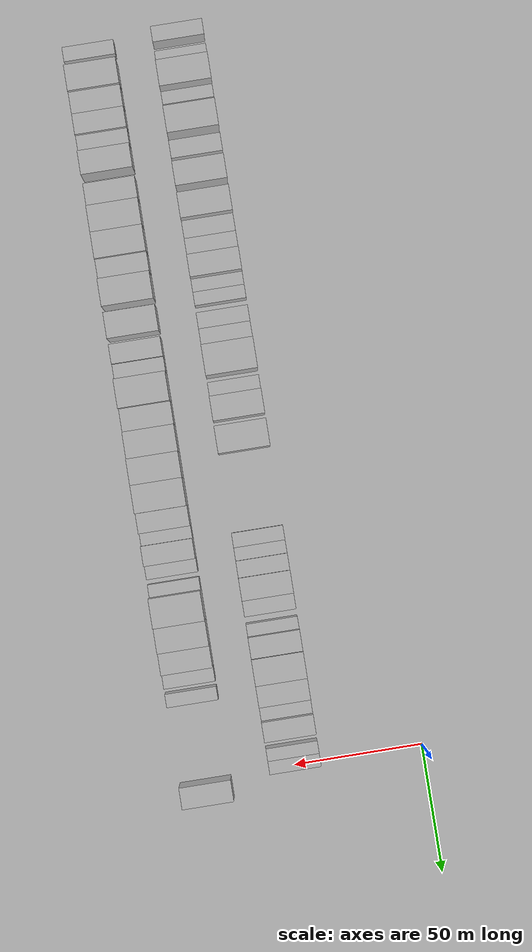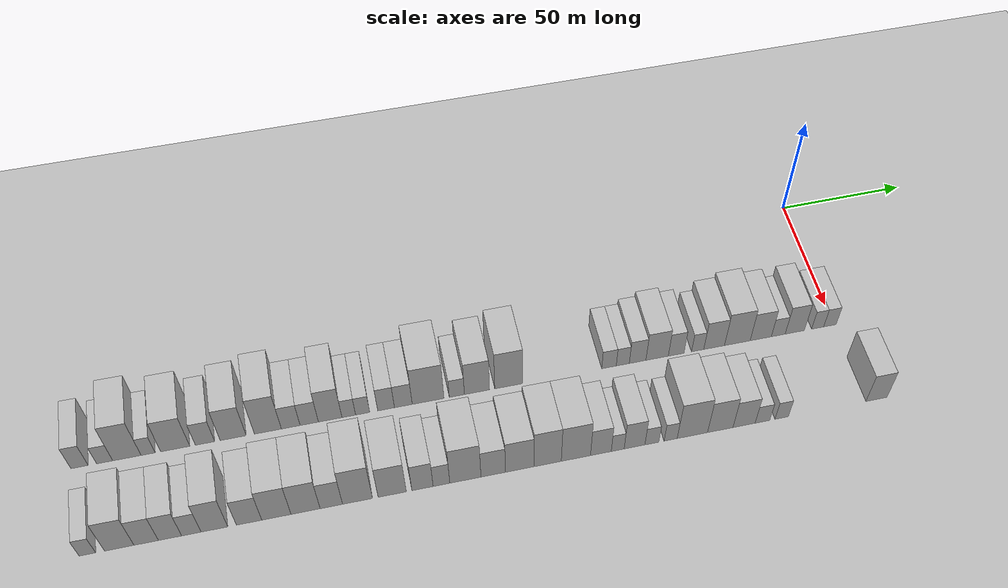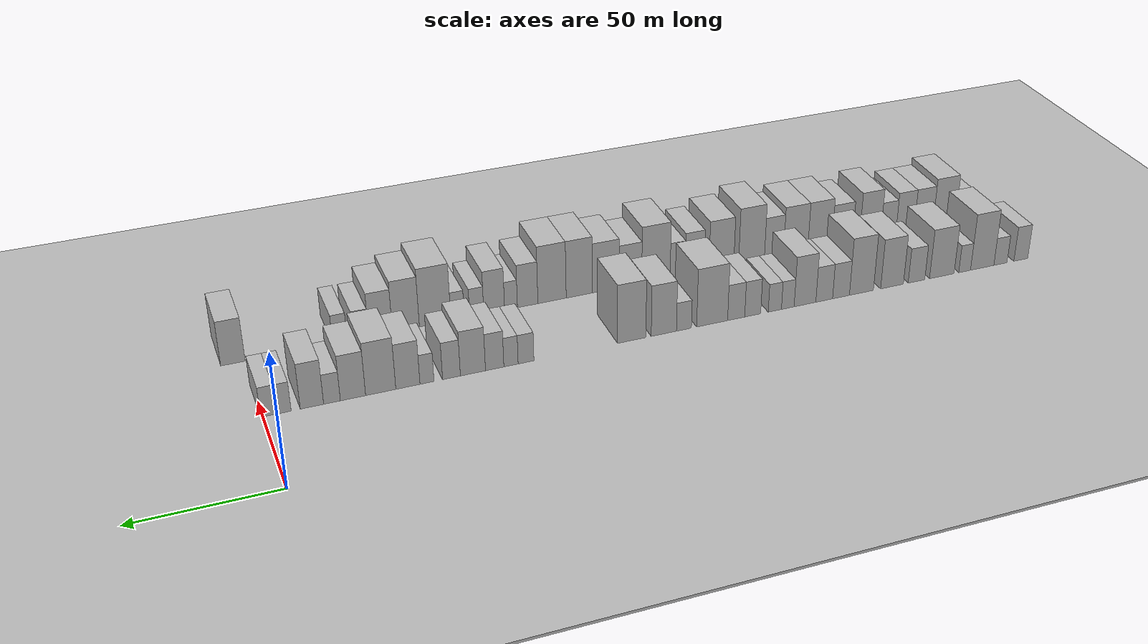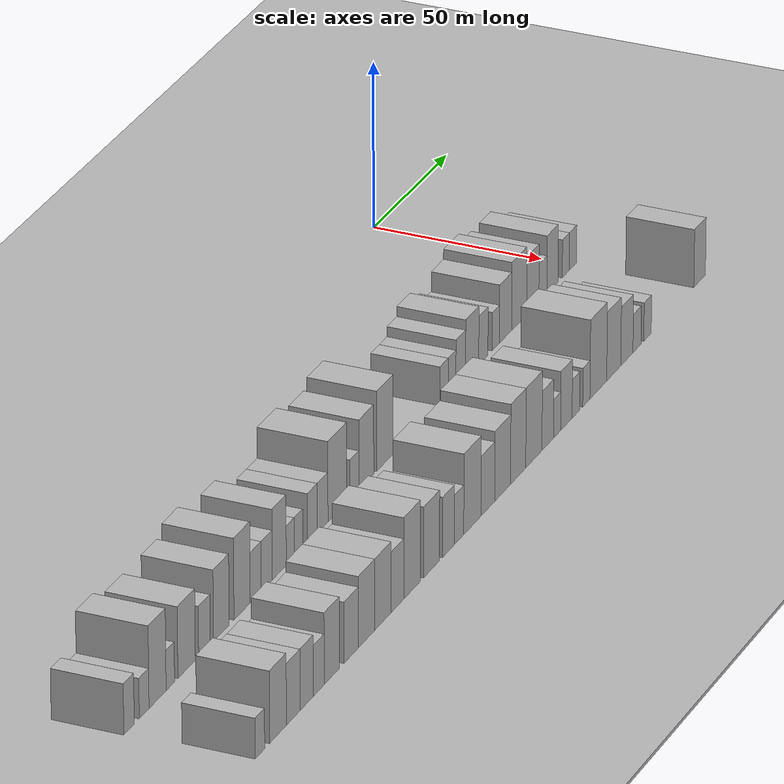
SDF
<sdf version="1.6">
 <world name="default">
  <include><name>ground_plane_1</name><uri>model://HANNAS_ground_plane</uri></include>
  <include>
   <name>ground_plane_2</name>
   <uri>model://HANNAS_ground_plane</uri>
   <pose>100 0 0  0 0 0</pose>
  </include>
  <model name="building_1">
   <static>1</static>
   <pose>50.0000 -286.9524 0 0.000000 0.000000 0.000000</pose>
   <link name="link">
    <pose>0 0 7.50 0 0 0</pose>
    <collision name="collision"><geometry><box><size>20.0000 6.0952 15.0000</size></box></geometry></collision>
    <visual name="visual">
     <cast_shadows>0</cast_shadows>
     <geometry><box><size>20.0000 6.0952 15.0000</size></box></geometry>
     <material>
      <script>
       <uri>model://HANNAS_wall/materials/scripts</uri>
       <uri>model://HANNAS_wall/materials/textures</uri>
       <name>vrc/HANNAS_wall</name>
      </script>
     </material>
    </visual>
   </link>
  </model>
  <model name="building_2">
   <static>1</static>
   <pose>50.0000 -278.0314 0 0.000000 0.000000 0.000000</pose>
   <link name="link">
    <pose>0 0 6.00 0 0 0</pose>
    <collision name="collision"><geometry><box><size>20.0000 5.7467 12.0000</size></box></geometry></collision>
    <visual name="visual">
     <cast_shadows>0</cast_shadows>
     <geometry><box><size>20.0000 5.7467 12.0000</size></box></geometry>
     <material>
      <script>
       <uri>model://HANNAS_wall/materials/scripts</uri>
       <uri>model://HANNAS_wall/materials/textures</uri>
       <name>vrc/HANNAS_wall</name>
      </script>
     </material>
    </visual>
   </link>
  </model>
  <model name="building_3">
   <static>1</static>
   <pose>50.0000 -270.0946 0 0.000000 0.000000 0.000000</pose>
   <link name="link">
    <pose>0 0 12.00 0 0 0</pose>
    <collision name="collision"><geometry><box><size>20.0000 10.1269 24.0000</size></box></geometry></collision>
    <visual name="visual">
     <cast_shadows>0</cast_shadows>
     <geometry><box><size>20.0000 10.1269 24.0000</size></box></geometry>
     <material>
      <script>
       <uri>model://HANNAS_wall/materials/scripts</uri>
       <uri>model://HANNAS_wall/materials/textures</uri>
       <name>vrc/HANNAS_wall</name>
      </script>
     </material>
    </visual>
   </link>
  </model>
  <model name="building_4">
   <static>1</static>
   <pose>50.0000 -262.5063 0 0.000000 0.000000 0.000000</pose>
   <link name="link">
    <pose>0 0 6.00 0 0 0</pose>
    <collision name="collision"><geometry><box><size>20.0000 5.0498 12.0000</size></box></geometry></collision>
    <visual name="visual">
     <cast_shadows>0</cast_shadows>
     <geometry><box><size>20.0000 5.0498 12.0000</size></box></geometry>
     <material>
      <script>
       <uri>model://HANNAS_wall/materials/scripts</uri>
       <uri>model://HANNAS_wall/materials/textures</uri>
       <name>vrc/HANNAS_wall</name>
      </script>
     </material>
    </visual>
   </link>
  </model>
  <model name="building_5">
   <static>1</static>
   <pose>50.0000 -252.7505 0 0.000000 0.000000 0.000000</pose>
   <link name="link">
    <pose>0 0 10.50 0 0 0</pose>
    <collision name="collision"><geometry><box><size>20.0000 10.4617 21.0000</size></box></geometry></collision>
    <visual name="visual">
     <cast_shadows>0</cast_shadows>
     <geometry><box><size>20.0000 10.4617 21.0000</size></box></geometry>
     <material>
      <script>
       <uri>model://HANNAS_wall/materials/scripts</uri>
       <uri>model://HANNAS_wall/materials/textures</uri>
       <name>vrc/HANNAS_wall</name>
      </script>
     </material>
    </visual>
   </link>
  </model>
  <model name="building_6">
   <static>1</static>
   <pose>50.0000 -242.0222 0 0.000000 0.000000 0.000000</pose>
   <link name="link">
    <pose>0 0 7.50 0 0 0</pose>
    <collision name="collision"><geometry><box><size>20.0000 6.9950 15.0000</size></box></geometry></collision>
    <visual name="visual">
     <cast_shadows>0</cast_shadows>
     <geometry><box><size>20.0000 6.9950 15.0000</size></box></geometry>
     <material>
      <script>
       <uri>model://HANNAS_wall/materials/scripts</uri>
       <uri>model://HANNAS_wall/materials/textures</uri>
       <name>vrc/HANNAS_wall</name>
      </script>
     </material>
    </visual>
   </link>
  </model>
  <model name="building_7">
   <static>1</static>
   <pose>50.0000 -231.7771 0 0.000000 0.000000 0.000000</pose>
   <link name="link">
    <pose>0 0 10.50 0 0 0</pose>
    <collision name="collision"><geometry><box><size>20.0000 9.4951 21.0000</size></box></geometry></collision>
    <visual name="visual">
     <cast_shadows>0</cast_shadows>
     <geometry><box><size>20.0000 9.4951 21.0000</size></box></geometry>
     <material>
      <script>
       <uri>model://HANNAS_wall/materials/scripts</uri>
       <uri>model://HANNAS_wall/materials/textures</uri>
       <name>vrc/HANNAS_wall</name>
      </script>
     </material>
    </visual>
   </link>
  </model>
  <model name="building_8">
   <static>1</static>
   <pose>50.0000 -219.0896 0 0.000000 0.000000 0.000000</pose>
   <link name="link">
    <pose>0 0 12.00 0 0 0</pose>
    <collision name="collision"><geometry><box><size>20.0000 9.8800 24.0000</size></box></geometry></collision>
    <visual name="visual">
     <cast_shadows>0</cast_shadows>
     <geometry><box><size>20.0000 9.8800 24.0000</size></box></geometry>
     <material>
      <script>
       <uri>model://HANNAS_wall/materials/scripts</uri>
       <uri>model://HANNAS_wall/materials/textures</uri>
       <name>vrc/HANNAS_wall</name>
      </script>
     </material>
    </visual>
   </link>
  </model>
  <model name="building_9">
   <static>1</static>
   <pose>50.0000 -210.7066 0 0.000000 0.000000 0.000000</pose>
   <link name="link">
    <pose>0 0 7.50 0 0 0</pose>
    <collision name="collision"><geometry><box><size>20.0000 6.8859 15.0000</size></box></geometry></collision>
    <visual name="visual">
     <cast_shadows>0</cast_shadows>
     <geometry><box><size>20.0000 6.8859 15.0000</size></box></geometry>
     <material>
      <script>
       <uri>model://HANNAS_wall/materials/scripts</uri>
       <uri>model://HANNAS_wall/materials/textures</uri>
       <name>vrc/HANNAS_wall</name>
      </script>
     </material>
    </visual>
   </link>
  </model>
  <model name="building_10">
   <static>1</static>
   <pose>50.0000 -203.8775 0 0.000000 0.000000 0.000000</pose>
   <link name="link">
    <pose>0 0 7.50 0 0 0</pose>
    <collision name="collision"><geometry><box><size>20.0000 6.7725 15.0000</size></box></geometry></collision>
    <visual name="visual">
     <cast_shadows>0</cast_shadows>
     <geometry><box><size>20.0000 6.7725 15.0000</size></box></geometry>
     <material>
      <script>
       <uri>model://HANNAS_wall/materials/scripts</uri>
       <uri>model://HANNAS_wall/materials/textures</uri>
       <name>vrc/HANNAS_wall</name>
      </script>
     </material>
    </visual>
   </link>
  </model>
  <model name="building_11">
   <static>1</static>
   <pose>50.0000 -196.1210 0 0.000000 0.000000 0.000000</pose>
   <link name="link">
    <pose>0 0 10.50 0 0 0</pose>
    <collision name="collision"><geometry><box><size>20.0000 8.7404 21.0000</size></box></geometry></collision>
    <visual name="visual">
     <cast_shadows>0</cast_shadows>
     <geometry><box><size>20.0000 8.7404 21.0000</size></box></geometry>
     <material>
      <script>
       <uri>model://HANNAS_wall/materials/scripts</uri>
       <uri>model://HANNAS_wall/materials/textures</uri>
       <name>vrc/HANNAS_wall</name>
      </script>
     </material>
    </visual>
   </link>
  </model>
  <model name="building_12">
   <static>1</static>
   <pose>50.0000 -189.2154 0 0.000000 0.000000 0.000000</pose>
   <link name="link">
    <pose>0 0 6.00 0 0 0</pose>
    <collision name="collision"><geometry><box><size>20.0000 5.0708 12.0000</size></box></geometry></collision>
    <visual name="visual">
     <cast_shadows>0</cast_shadows>
     <geometry><box><size>20.0000 5.0708 12.0000</size></box></geometry>
     <material>
      <script>
       <uri>model://HANNAS_wall/materials/scripts</uri>
       <uri>model://HANNAS_wall/materials/textures</uri>
       <name>vrc/HANNAS_wall</name>
      </script>
     </material>
    </visual>
   </link>
  </model>
  <model name="building_13">
   <static>1</static>
   <pose>50.0000 -184.0601 0 0.000000 0.000000 0.000000</pose>
   <link name="link">
    <pose>0 0 6.00 0 0 0</pose>
    <collision name="collision"><geometry><box><size>20.0000 5.2398 12.0000</size></box></geometry></collision>
    <visual name="visual">
     <cast_shadows>0</cast_shadows>
     <geometry><box><size>20.0000 5.2398 12.0000</size></box></geometry>
     <material>
      <script>
       <uri>model://HANNAS_wall/materials/scripts</uri>
       <uri>model://HANNAS_wall/materials/textures</uri>
       <name>vrc/HANNAS_wall</name>
      </script>
     </material>
    </visual>
   </link>
  </model>
  <model name="building_14">
   <static>1</static>
   <pose>50.0000 -175.2972 0 0.000000 0.000000 0.000000</pose>
   <link name="link">
    <pose>0 0 7.50 0 0 0</pose>
    <collision name="collision"><geometry><box><size>20.0000 6.2859 15.0000</size></box></geometry></collision>
    <visual name="visual">
     <cast_shadows>0</cast_shadows>
     <geometry><box><size>20.0000 6.2859 15.0000</size></box></geometry>
     <material>
      <script>
       <uri>model://HANNAS_wall/materials/scripts</uri>
       <uri>model://HANNAS_wall/materials/textures</uri>
       <name>vrc/HANNAS_wall</name>
      </script>
     </material>
    </visual>
   </link>
  </model>
  <model name="building_15">
   <static>1</static>
   <pose>50.0000 -168.8099 0 0.000000 0.000000 0.000000</pose>
   <link name="link">
    <pose>0 0 7.50 0 0 0</pose>
    <collision name="collision"><geometry><box><size>20.0000 6.6888 15.0000</size></box></geometry></collision>
    <visual name="visual">
     <cast_shadows>0</cast_shadows>
     <geometry><box><size>20.0000 6.6888 15.0000</size></box></geometry>
     <material>
      <script>
       <uri>model://HANNAS_wall/materials/scripts</uri>
       <uri>model://HANNAS_wall/materials/textures</uri>
       <name>vrc/HANNAS_wall</name>
      </script>
     </material>
    </visual>
   </link>
  </model>
  <model name="building_16">
   <static>1</static>
   <pose>50.0000 -159.4696 0 0.000000 0.000000 0.000000</pose>
   <link name="link">
    <pose>0 0 12.00 0 0 0</pose>
    <collision name="collision"><geometry><box><size>20.0000 11.9917 24.0000</size></box></geometry></collision>
    <visual name="visual">
     <cast_shadows>0</cast_shadows>
     <geometry><box><size>20.0000 11.9917 24.0000</size></box></geometry>
     <material>
      <script>
       <uri>model://HANNAS_wall/materials/scripts</uri>
       <uri>model://HANNAS_wall/materials/textures</uri>
       <name>vrc/HANNAS_wall</name>
      </script>
     </material>
    </visual>
   </link>
  </model>
  <model name="building_17">
   <static>1</static>
   <pose>50.0000 -148.5982 0 0.000000 0.000000 0.000000</pose>
   <link name="link">
    <pose>0 0 6.00 0 0 0</pose>
    <collision name="collision"><geometry><box><size>20.0000 5.7511 12.0000</size></box></geometry></collision>
    <visual name="visual">
     <cast_shadows>0</cast_shadows>
     <geometry><box><size>20.0000 5.7511 12.0000</size></box></geometry>
     <material>
      <script>
       <uri>model://HANNAS_wall/materials/scripts</uri>
       <uri>model://HANNAS_wall/materials/textures</uri>
       <name>vrc/HANNAS_wall</name>
      </script>
     </material>
    </visual>
   </link>
  </model>
  <model name="building_18">
   <static>1</static>
   <pose>50.0000 -140.9373 0 0.000000 0.000000 0.000000</pose>
   <link name="link">
    <pose>0 0 10.50 0 0 0</pose>
    <collision name="collision"><geometry><box><size>20.0000 9.5707 21.0000</size></box></geometry></collision>
    <visual name="visual">
     <cast_shadows>0</cast_shadows>
     <geometry><box><size>20.0000 9.5707 21.0000</size></box></geometry>
     <material>
      <script>
       <uri>model://HANNAS_wall/materials/scripts</uri>
       <uri>model://HANNAS_wall/materials/textures</uri>
       <name>vrc/HANNAS_wall</name>
      </script>
     </material>
    </visual>
   </link>
  </model>
  <model name="building_19">
   <static>1</static>
   <pose>50.0000 -128.8325 0 0.000000 0.000000 0.000000</pose>
   <link name="link">
    <pose>0 0 12.00 0 0 0</pose>
    <collision name="collision"><geometry><box><size>20.0000 10.6388 24.0000</size></box></geometry></collision>
    <visual name="visual">
     <cast_shadows>0</cast_shadows>
     <geometry><box><size>20.0000 10.6388 24.0000</size></box></geometry>
     <material>
      <script>
       <uri>model://HANNAS_wall/materials/scripts</uri>
       <uri>model://HANNAS_wall/materials/textures</uri>
       <name>vrc/HANNAS_wall</name>
      </script>
     </material>
    </visual>
   </link>
  </model>
  <model name="building_20">
   <static>1</static>
   <pose>50.0000 -89.9848 0 0.000000 0.000000 0.000000</pose>
   <link name="link">
    <pose>0 0 6.00 0 0 0</pose>
    <collision name="collision"><geometry><box><size>20.0000 5.6855 12.0000</size></box></geometry></collision>
    <visual name="visual">
     <cast_shadows>0</cast_shadows>
     <geometry><box><size>20.0000 5.6855 12.0000</size></box></geometry>
     <material>
      <script>
       <uri>model://HANNAS_wall/materials/scripts</uri>
       <uri>model://HANNAS_wall/materials/textures</uri>
       <name>vrc/HANNAS_wall</name>
      </script>
     </material>
    </visual>
   </link>
  </model>
  <model name="building_21">
   <static>1</static>
   <pose>50.0000 -84.5897 0 0.000000 0.000000 0.000000</pose>
   <link name="link">
    <pose>0 0 6.00 0 0 0</pose>
    <collision name="collision"><geometry><box><size>20.0000 5.1047 12.0000</size></box></geometry></collision>
    <visual name="visual">
     <cast_shadows>0</cast_shadows>
     <geometry><box><size>20.0000 5.1047 12.0000</size></box></geometry>
     <material>
      <script>
       <uri>model://HANNAS_wall/materials/scripts</uri>
       <uri>model://HANNAS_wall/materials/textures</uri>
       <name>vrc/HANNAS_wall</name>
      </script>
     </material>
    </visual>
   </link>
  </model>
  <model name="building_22">
   <static>1</static>
   <pose>50.0000 -78.7702 0 0.000000 0.000000 0.000000</pose>
   <link name="link">
    <pose>0 0 7.50 0 0 0</pose>
    <collision name="collision"><geometry><box><size>20.0000 6.5341 15.0000</size></box></geometry></collision>
    <visual name="visual">
     <cast_shadows>0</cast_shadows>
     <geometry><box><size>20.0000 6.5341 15.0000</size></box></geometry>
     <material>
      <script>
       <uri>model://HANNAS_wall/materials/scripts</uri>
       <uri>model://HANNAS_wall/materials/textures</uri>
       <name>vrc/HANNAS_wall</name>
      </script>
     </material>
    </visual>
   </link>
  </model>
  <model name="building_23">
   <static>1</static>
   <pose>50.0000 -71.0787 0 0.000000 0.000000 0.000000</pose>
   <link name="link">
    <pose>0 0 9.00 0 0 0</pose>
    <collision name="collision"><geometry><box><size>20.0000 8.8489 18.0000</size></box></geometry></collision>
    <visual name="visual">
     <cast_shadows>0</cast_shadows>
     <geometry><box><size>20.0000 8.8489 18.0000</size></box></geometry>
     <material>
      <script>
       <uri>model://HANNAS_wall/materials/scripts</uri>
       <uri>model://HANNAS_wall/materials/textures</uri>
       <name>vrc/HANNAS_wall</name>
      </script>
     </material>
    </visual>
   </link>
  </model>
  <model name="building_24">
   <static>1</static>
   <pose>50.0000 -63.5468 0 0.000000 0.000000 0.000000</pose>
   <link name="link">
    <pose>0 0 7.50 0 0 0</pose>
    <collision name="collision"><geometry><box><size>20.0000 6.2149 15.0000</size></box></geometry></collision>
    <visual name="visual">
     <cast_shadows>0</cast_shadows>
     <geometry><box><size>20.0000 6.2149 15.0000</size></box></geometry>
     <material>
      <script>
       <uri>model://HANNAS_wall/materials/scripts</uri>
       <uri>model://HANNAS_wall/materials/textures</uri>
       <name>vrc/HANNAS_wall</name>
      </script>
     </material>
    </visual>
   </link>
  </model>
  <model name="building_25">
   <static>1</static>
   <pose>50.0000 -55.0133 0 0.000000 0.000000 0.000000</pose>
   <link name="link">
    <pose>0 0 6.00 0 0 0</pose>
    <collision name="collision"><geometry><box><size>20.0000 4.8523 12.0000</size></box></geometry></collision>
    <visual name="visual">
     <cast_shadows>0</cast_shadows>
     <geometry><box><size>20.0000 4.8523 12.0000</size></box></geometry>
     <material>
      <script>
       <uri>model://HANNAS_wall/materials/scripts</uri>
       <uri>model://HANNAS_wall/materials/textures</uri>
       <name>vrc/HANNAS_wall</name>
      </script>
     </material>
    </visual>
   </link>
  </model>
  <model name="building_26">
   <static>1</static>
   <pose>50.0000 -48.4368 0 0.000000 0.000000 0.000000</pose>
   <link name="link">
    <pose>0 0 9.00 0 0 0</pose>
    <collision name="collision"><geometry><box><size>20.0000 8.3007 18.0000</size></box></geometry></collision>
    <visual name="visual">
     <cast_shadows>0</cast_shadows>
     <geometry><box><size>20.0000 8.3007 18.0000</size></box></geometry>
     <material>
      <script>
       <uri>model://HANNAS_wall/materials/scripts</uri>
       <uri>model://HANNAS_wall/materials/textures</uri>
       <name>vrc/HANNAS_wall</name>
      </script>
     </material>
    </visual>
   </link>
  </model>
  <model name="building_27">
   <static>1</static>
   <pose>50.0000 -39.1435 0 0.000000 0.000000 0.000000</pose>
   <link name="link">
    <pose>0 0 10.50 0 0 0</pose>
    <collision name="collision"><geometry><box><size>20.0000 10.2858 21.0000</size></box></geometry></collision>
    <visual name="visual">
     <cast_shadows>0</cast_shadows>
     <geometry><box><size>20.0000 10.2858 21.0000</size></box></geometry>
     <material>
      <script>
       <uri>model://HANNAS_wall/materials/scripts</uri>
       <uri>model://HANNAS_wall/materials/textures</uri>
       <name>vrc/HANNAS_wall</name>
      </script>
     </material>
    </visual>
   </link>
  </model>
  <model name="building_28">
   <static>1</static>
   <pose>50.0000 -29.7491 0 0.000000 0.000000 0.000000</pose>
   <link name="link">
    <pose>0 0 9.00 0 0 0</pose>
    <collision name="collision"><geometry><box><size>20.0000 8.5032 18.0000</size></box></geometry></collision>
    <visual name="visual">
     <cast_shadows>0</cast_shadows>
     <geometry><box><size>20.0000 8.5032 18.0000</size></box></geometry>
     <material>
      <script>
       <uri>model://HANNAS_wall/materials/scripts</uri>
       <uri>model://HANNAS_wall/materials/textures</uri>
       <name>vrc/HANNAS_wall</name>
      </script>
     </material>
    </visual>
   </link>
  </model>
  <model name="building_29">
   <static>1</static>
   <pose>50.0000 -22.7021 0 0.000000 0.000000 0.000000</pose>
   <link name="link">
    <pose>0 0 6.00 0 0 0</pose>
    <collision name="collision"><geometry><box><size>20.0000 5.5906 12.0000</size></box></geometry></collision>
    <visual name="visual">
     <cast_shadows>0</cast_shadows>
     <geometry><box><size>20.0000 5.5906 12.0000</size></box></geometry>
     <material>
      <script>
       <uri>model://HANNAS_wall/materials/scripts</uri>
       <uri>model://HANNAS_wall/materials/textures</uri>
       <name>vrc/HANNAS_wall</name>
      </script>
     </material>
    </visual>
   </link>
  </model>
  <model name="building_30">
   <static>1</static>
   <pose>50.0000 -16.0289 0 0.000000 0.000000 0.000000</pose>
   <link name="link">
    <pose>0 0 9.00 0 0 0</pose>
    <collision name="collision"><geometry><box><size>20.0000 7.7559 18.0000</size></box></geometry></collision>
    <visual name="visual">
     <cast_shadows>0</cast_shadows>
     <geometry><box><size>20.0000 7.7559 18.0000</size></box></geometry>
     <material>
      <script>
       <uri>model://HANNAS_wall/materials/scripts</uri>
       <uri>model://HANNAS_wall/materials/textures</uri>
       <name>vrc/HANNAS_wall</name>
      </script>
     </material>
    </visual>
   </link>
  </model>
  <model name="building_31">
   <static>1</static>
   <pose>50.0000 -6.6972 0 0.000000 0.000000 0.000000</pose>
   <link name="link">
    <pose>0 0 6.00 0 0 0</pose>
    <collision name="collision"><geometry><box><size>20.0000 4.9074 12.0000</size></box></geometry></collision>
    <visual name="visual">
     <cast_shadows>0</cast_shadows>
     <geometry><box><size>20.0000 4.9074 12.0000</size></box></geometry>
     <material>
      <script>
       <uri>model://HANNAS_wall/materials/scripts</uri>
       <uri>model://HANNAS_wall/materials/textures</uri>
       <name>vrc/HANNAS_wall</name>
      </script>
     </material>
    </visual>
   </link>
  </model>
  <model name="building_32">
   <static>1</static>
   <pose>50.0000 -1.6938 0 0.000000 0.000000 0.000000</pose>
   <link name="link">
    <pose>0 0 6.00 0 0 0</pose>
    <collision name="collision"><geometry><box><size>20.0000 5.0994 12.0000</size></box></geometry></collision>
    <visual name="visual">
     <cast_shadows>0</cast_shadows>
     <geometry><box><size>20.0000 5.0994 12.0000</size></box></geometry>
     <material>
      <script>
       <uri>model://HANNAS_wall/materials/scripts</uri>
       <uri>model://HANNAS_wall/materials/textures</uri>
       <name>vrc/HANNAS_wall</name>
      </script>
     </material>
    </visual>
   </link>
  </model>
  <model name="building_64">
   <static>1</static>
   <pose>85.0000 -285.1893 0 0.000000 0.000000 0.000000</pose>
   <link name="link">
    <pose>0 0 6.00 0 0 0</pose>
    <collision name="collision"><geometry><box><size>20.0000 5.6215 12.0000</size></box></geometry></collision>
    <visual name="visual">
     <cast_shadows>0</cast_shadows>
     <geometry><box><size>20.0000 5.6215 12.0000</size></box></geometry>
     <material>
      <script>
       <uri>model://HANNAS_wall/materials/scripts</uri>
       <uri>model://HANNAS_wall/materials/textures</uri>
       <name>vrc/HANNAS_wall</name>
      </script>
     </material>
    </visual>
   </link>
  </model>
  <model name="building_65">
   <static>1</static>
   <pose>85.0000 -274.3314 0 0.000000 0.000000 0.000000</pose>
   <link name="link">
    <pose>0 0 10.50 0 0 0</pose>
    <collision name="collision"><geometry><box><size>20.0000 10.0942 21.0000</size></box></geometry></collision>
    <visual name="visual">
     <cast_shadows>0</cast_shadows>
     <geometry><box><size>20.0000 10.0942 21.0000</size></box></geometry>
     <material>
      <script>
       <uri>model://HANNAS_wall/materials/scripts</uri>
       <uri>model://HANNAS_wall/materials/textures</uri>
       <name>vrc/HANNAS_wall</name>
      </script>
     </material>
    </visual>
   </link>
  </model>
  <model name="building_66">
   <static>1</static>
   <pose>85.0000 -265.0835 0 0.000000 0.000000 0.000000</pose>
   <link name="link">
    <pose>0 0 9.00 0 0 0</pose>
    <collision name="collision"><geometry><box><size>20.0000 8.4016 18.0000</size></box></geometry></collision>
    <visual name="visual">
     <cast_shadows>0</cast_shadows>
     <geometry><box><size>20.0000 8.4016 18.0000</size></box></geometry>
     <material>
      <script>
       <uri>model://HANNAS_wall/materials/scripts</uri>
       <uri>model://HANNAS_wall/materials/textures</uri>
       <name>vrc/HANNAS_wall</name>
      </script>
     </material>
    </visual>
   </link>
  </model>
  <model name="building_67">
   <static>1</static>
   <pose>85.0000 -256.8736 0 0.000000 0.000000 0.000000</pose>
   <link name="link">
    <pose>0 0 9.00 0 0 0</pose>
    <collision name="collision"><geometry><box><size>20.0000 8.0182 18.0000</size></box></geometry></collision>
    <visual name="visual">
     <cast_shadows>0</cast_shadows>
     <geometry><box><size>20.0000 8.0182 18.0000</size></box></geometry>
     <material>
      <script>
       <uri>model://HANNAS_wall/materials/scripts</uri>
       <uri>model://HANNAS_wall/materials/textures</uri>
       <name>vrc/HANNAS_wall</name>
      </script>
     </material>
    </visual>
   </link>
  </model>
  <model name="building_68">
   <static>1</static>
   <pose>85.0000 -249.5119 0 0.000000 0.000000 0.000000</pose>
   <link name="link">
    <pose>0 0 7.50 0 0 0</pose>
    <collision name="collision"><geometry><box><size>20.0000 6.7050 15.0000</size></box></geometry></collision>
    <visual name="visual">
     <cast_shadows>0</cast_shadows>
     <geometry><box><size>20.0000 6.7050 15.0000</size></box></geometry>
     <material>
      <script>
       <uri>model://HANNAS_wall/materials/scripts</uri>
       <uri>model://HANNAS_wall/materials/textures</uri>
       <name>vrc/HANNAS_wall</name>
      </script>
     </material>
    </visual>
   </link>
  </model>
  <model name="building_69">
   <static>1</static>
   <pose>85.0000 -241.5153 0 0.000000 0.000000 0.000000</pose>
   <link name="link">
    <pose>0 0 10.50 0 0 0</pose>
    <collision name="collision"><geometry><box><size>20.0000 9.2883 21.0000</size></box></geometry></collision>
    <visual name="visual">
     <cast_shadows>0</cast_shadows>
     <geometry><box><size>20.0000 9.2883 21.0000</size></box></geometry>
     <material>
      <script>
       <uri>model://HANNAS_wall/materials/scripts</uri>
       <uri>model://HANNAS_wall/materials/textures</uri>
       <name>vrc/HANNAS_wall</name>
      </script>
     </material>
    </visual>
   </link>
  </model>
  <model name="building_70">
   <static>1</static>
   <pose>85.0000 -229.4211 0 0.000000 0.000000 0.000000</pose>
   <link name="link">
    <pose>0 0 9.00 0 0 0</pose>
    <collision name="collision"><geometry><box><size>20.0000 8.9000 18.0000</size></box></geometry></collision>
    <visual name="visual">
     <cast_shadows>0</cast_shadows>
     <geometry><box><size>20.0000 8.9000 18.0000</size></box></geometry>
     <material>
      <script>
       <uri>model://HANNAS_wall/materials/scripts</uri>
       <uri>model://HANNAS_wall/materials/textures</uri>
       <name>vrc/HANNAS_wall</name>
      </script>
     </material>
    </visual>
   </link>
  </model>
  <model name="building_71">
   <static>1</static>
   <pose>85.0000 -219.8241 0 0.000000 0.000000 0.000000</pose>
   <link name="link">
    <pose>0 0 10.50 0 0 0</pose>
    <collision name="collision"><geometry><box><size>20.0000 10.2942 21.0000</size></box></geometry></collision>
    <visual name="visual">
     <cast_shadows>0</cast_shadows>
     <geometry><box><size>20.0000 10.2942 21.0000</size></box></geometry>
     <material>
      <script>
       <uri>model://HANNAS_wall/materials/scripts</uri>
       <uri>model://HANNAS_wall/materials/textures</uri>
       <name>vrc/HANNAS_wall</name>
      </script>
     </material>
    </visual>
   </link>
  </model>
  <model name="building_72">
   <static>1</static>
   <pose>85.0000 -209.5360 0 0.000000 0.000000 0.000000</pose>
   <link name="link">
    <pose>0 0 10.50 0 0 0</pose>
    <collision name="collision"><geometry><box><size>20.0000 10.2821 21.0000</size></box></geometry></collision>
    <visual name="visual">
     <cast_shadows>0</cast_shadows>
     <geometry><box><size>20.0000 10.2821 21.0000</size></box></geometry>
     <material>
      <script>
       <uri>model://HANNAS_wall/materials/scripts</uri>
       <uri>model://HANNAS_wall/materials/textures</uri>
       <name>vrc/HANNAS_wall</name>
      </script>
     </material>
    </visual>
   </link>
  </model>
  <model name="building_73">
   <static>1</static>
   <pose>85.0000 -200.4033 0 0.000000 0.000000 0.000000</pose>
   <link name="link">
    <pose>0 0 9.00 0 0 0</pose>
    <collision name="collision"><geometry><box><size>20.0000 7.9832 18.0000</size></box></geometry></collision>
    <visual name="visual">
     <cast_shadows>0</cast_shadows>
     <geometry><box><size>20.0000 7.9832 18.0000</size></box></geometry>
     <material>
      <script>
       <uri>model://HANNAS_wall/materials/scripts</uri>
       <uri>model://HANNAS_wall/materials/textures</uri>
       <name>vrc/HANNAS_wall</name>
      </script>
     </material>
    </visual>
   </link>
  </model>
  <model name="building_74">
   <static>1</static>
   <pose>85.0000 -191.0588 0 0.000000 0.000000 0.000000</pose>
   <link name="link">
    <pose>0 0 12.00 0 0 0</pose>
    <collision name="collision"><geometry><box><size>20.0000 10.7058 24.0000</size></box></geometry></collision>
    <visual name="visual">
     <cast_shadows>0</cast_shadows>
     <geometry><box><size>20.0000 10.7058 24.0000</size></box></geometry>
     <material>
      <script>
       <uri>model://HANNAS_wall/materials/scripts</uri>
       <uri>model://HANNAS_wall/materials/textures</uri>
       <name>vrc/HANNAS_wall</name>
      </script>
     </material>
    </visual>
   </link>
  </model>
  <model name="building_75">
   <static>1</static>
   <pose>85.0000 -178.6205 0 0.000000 0.000000 0.000000</pose>
   <link name="link">
    <pose>0 0 10.50 0 0 0</pose>
    <collision name="collision"><geometry><box><size>20.0000 10.1707 21.0000</size></box></geometry></collision>
    <visual name="visual">
     <cast_shadows>0</cast_shadows>
     <geometry><box><size>20.0000 10.1707 21.0000</size></box></geometry>
     <material>
      <script>
       <uri>model://HANNAS_wall/materials/scripts</uri>
       <uri>model://HANNAS_wall/materials/textures</uri>
       <name>vrc/HANNAS_wall</name>
      </script>
     </material>
    </visual>
   </link>
  </model>
  <model name="building_76">
   <static>1</static>
   <pose>85.0000 -167.6969 0 0.000000 0.000000 0.000000</pose>
   <link name="link">
    <pose>0 0 9.00 0 0 0</pose>
    <collision name="collision"><geometry><box><size>20.0000 7.6764 18.0000</size></box></geometry></collision>
    <visual name="visual">
     <cast_shadows>0</cast_shadows>
     <geometry><box><size>20.0000 7.6764 18.0000</size></box></geometry>
     <material>
      <script>
       <uri>model://HANNAS_wall/materials/scripts</uri>
       <uri>model://HANNAS_wall/materials/textures</uri>
       <name>vrc/HANNAS_wall</name>
      </script>
     </material>
    </visual>
   </link>
  </model>
  <model name="building_77">
   <static>1</static>
   <pose>85.0000 -160.8397 0 0.000000 0.000000 0.000000</pose>
   <link name="link">
    <pose>0 0 7.50 0 0 0</pose>
    <collision name="collision"><geometry><box><size>20.0000 6.0380 15.0000</size></box></geometry></collision>
    <visual name="visual">
     <cast_shadows>0</cast_shadows>
     <geometry><box><size>20.0000 6.0380 15.0000</size></box></geometry>
     <material>
      <script>
       <uri>model://HANNAS_wall/materials/scripts</uri>
       <uri>model://HANNAS_wall/materials/textures</uri>
       <name>vrc/HANNAS_wall</name>
      </script>
     </material>
    </visual>
   </link>
  </model>
  <model name="building_78">
   <static>1</static>
   <pose>85.0000 -152.1448 0 0.000000 0.000000 0.000000</pose>
   <link name="link">
    <pose>0 0 12.00 0 0 0</pose>
    <collision name="collision"><geometry><box><size>20.0000 11.3518 24.0000</size></box></geometry></collision>
    <visual name="visual">
     <cast_shadows>0</cast_shadows>
     <geometry><box><size>20.0000 11.3518 24.0000</size></box></geometry>
     <material>
      <script>
       <uri>model://HANNAS_wall/materials/scripts</uri>
       <uri>model://HANNAS_wall/materials/textures</uri>
       <name>vrc/HANNAS_wall</name>
      </script>
     </material>
    </visual>
   </link>
  </model>
  <model name="building_79">
   <static>1</static>
   <pose>85.0000 -141.9900 0 0.000000 0.000000 0.000000</pose>
   <link name="link">
    <pose>0 0 9.00 0 0 0</pose>
    <collision name="collision"><geometry><box><size>20.0000 8.9579 18.0000</size></box></geometry></collision>
    <visual name="visual">
     <cast_shadows>0</cast_shadows>
     <geometry><box><size>20.0000 8.9579 18.0000</size></box></geometry>
     <material>
      <script>
       <uri>model://HANNAS_wall/materials/scripts</uri>
       <uri>model://HANNAS_wall/materials/textures</uri>
       <name>vrc/HANNAS_wall</name>
      </script>
     </material>
    </visual>
   </link>
  </model>
  <model name="building_80">
   <static>1</static>
   <pose>85.0000 -132.2767 0 0.000000 0.000000 0.000000</pose>
   <link name="link">
    <pose>0 0 10.50 0 0 0</pose>
    <collision name="collision"><geometry><box><size>20.0000 10.4687 21.0000</size></box></geometry></collision>
    <visual name="visual">
     <cast_shadows>0</cast_shadows>
     <geometry><box><size>20.0000 10.4687 21.0000</size></box></geometry>
     <material>
      <script>
       <uri>model://HANNAS_wall/materials/scripts</uri>
       <uri>model://HANNAS_wall/materials/textures</uri>
       <name>vrc/HANNAS_wall</name>
      </script>
     </material>
    </visual>
   </link>
  </model>
  <model name="building_81">
   <static>1</static>
   <pose>85.0000 -121.9616 0 0.000000 0.000000 0.000000</pose>
   <link name="link">
    <pose>0 0 12.00 0 0 0</pose>
    <collision name="collision"><geometry><box><size>20.0000 10.1615 24.0000</size></box></geometry></collision>
    <visual name="visual">
     <cast_shadows>0</cast_shadows>
     <geometry><box><size>20.0000 10.1615 24.0000</size></box></geometry>
     <material>
      <script>
       <uri>model://HANNAS_wall/materials/scripts</uri>
       <uri>model://HANNAS_wall/materials/textures</uri>
       <name>vrc/HANNAS_wall</name>
      </script>
     </material>
    </visual>
   </link>
  </model>
  <model name="building_82">
   <static>1</static>
   <pose>85.0000 -111.4427 0 0.000000 0.000000 0.000000</pose>
   <link name="link">
    <pose>0 0 12.00 0 0 0</pose>
    <collision name="collision"><geometry><box><size>20.0000 10.8764 24.0000</size></box></geometry></collision>
    <visual name="visual">
     <cast_shadows>0</cast_shadows>
     <geometry><box><size>20.0000 10.8764 24.0000</size></box></geometry>
     <material>
      <script>
       <uri>model://HANNAS_wall/materials/scripts</uri>
       <uri>model://HANNAS_wall/materials/textures</uri>
       <name>vrc/HANNAS_wall</name>
      </script>
     </material>
    </visual>
   </link>
  </model>
  <model name="building_83">
   <static>1</static>
   <pose>85.0000 -102.1208 0 0.000000 0.000000 0.000000</pose>
   <link name="link">
    <pose>0 0 9.00 0 0 0</pose>
    <collision name="collision"><geometry><box><size>20.0000 7.7675 18.0000</size></box></geometry></collision>
    <visual name="visual">
     <cast_shadows>0</cast_shadows>
     <geometry><box><size>20.0000 7.7675 18.0000</size></box></geometry>
     <material>
      <script>
       <uri>model://HANNAS_wall/materials/scripts</uri>
       <uri>model://HANNAS_wall/materials/textures</uri>
       <name>vrc/HANNAS_wall</name>
      </script>
     </material>
    </visual>
   </link>
  </model>
  <model name="building_84">
   <static>1</static>
   <pose>85.0000 -95.8179 0 0.000000 0.000000 0.000000</pose>
   <link name="link">
    <pose>0 0 6.00 0 0 0</pose>
    <collision name="collision"><geometry><box><size>20.0000 4.8383 12.0000</size></box></geometry></collision>
    <visual name="visual">
     <cast_shadows>0</cast_shadows>
     <geometry><box><size>20.0000 4.8383 12.0000</size></box></geometry>
     <material>
      <script>
       <uri>model://HANNAS_wall/materials/scripts</uri>
       <uri>model://HANNAS_wall/materials/textures</uri>
       <name>vrc/HANNAS_wall</name>
      </script>
     </material>
    </visual>
   </link>
  </model>
  <model name="building_85">
   <static>1</static>
   <pose>85.0000 -89.4899 0 0.000000 0.000000 0.000000</pose>
   <link name="link">
    <pose>0 0 9.00 0 0 0</pose>
    <collision name="collision"><geometry><box><size>20.0000 7.8177 18.0000</size></box></geometry></collision>
    <visual name="visual">
     <cast_shadows>0</cast_shadows>
     <geometry><box><size>20.0000 7.8177 18.0000</size></box></geometry>
     <material>
      <script>
       <uri>model://HANNAS_wall/materials/scripts</uri>
       <uri>model://HANNAS_wall/materials/textures</uri>
       <name>vrc/HANNAS_wall</name>
      </script>
     </material>
    </visual>
   </link>
  </model>
  <model name="building_86">
   <static>1</static>
   <pose>85.0000 -82.9454 0 0.000000 0.000000 0.000000</pose>
   <link name="link">
    <pose>0 0 6.00 0 0 0</pose>
    <collision name="collision"><geometry><box><size>20.0000 5.2714 12.0000</size></box></geometry></collision>
    <visual name="visual">
     <cast_shadows>0</cast_shadows>
     <geometry><box><size>20.0000 5.2714 12.0000</size></box></geometry>
     <material>
      <script>
       <uri>model://HANNAS_wall/materials/scripts</uri>
       <uri>model://HANNAS_wall/materials/textures</uri>
       <name>vrc/HANNAS_wall</name>
      </script>
     </material>
    </visual>
   </link>
  </model>
  <model name="building_87">
   <static>1</static>
   <pose>85.0000 -75.8343 0 0.000000 0.000000 0.000000</pose>
   <link name="link">
    <pose>0 0 6.00 0 0 0</pose>
    <collision name="collision"><geometry><box><size>20.0000 4.9508 12.0000</size></box></geometry></collision>
    <visual name="visual">
     <cast_shadows>0</cast_shadows>
     <geometry><box><size>20.0000 4.9508 12.0000</size></box></geometry>
     <material>
      <script>
       <uri>model://HANNAS_wall/materials/scripts</uri>
       <uri>model://HANNAS_wall/materials/textures</uri>
       <name>vrc/HANNAS_wall</name>
      </script>
     </material>
    </visual>
   </link>
  </model>
  <model name="building_88">
   <static>1</static>
   <pose>85.0000 -67.5858 0 0.000000 0.000000 0.000000</pose>
   <link name="link">
    <pose>0 0 12.00 0 0 0</pose>
    <collision name="collision"><geometry><box><size>20.0000 11.5461 24.0000</size></box></geometry></collision>
    <visual name="visual">
     <cast_shadows>0</cast_shadows>
     <geometry><box><size>20.0000 11.5461 24.0000</size></box></geometry>
     <material>
      <script>
       <uri>model://HANNAS_wall/materials/scripts</uri>
       <uri>model://HANNAS_wall/materials/textures</uri>
       <name>vrc/HANNAS_wall</name>
      </script>
     </material>
    </visual>
   </link>
  </model>
  <model name="building_89">
   <static>1</static>
   <pose>85.0000 -56.9248 0 0.000000 0.000000 0.000000</pose>
   <link name="link">
    <pose>0 0 10.50 0 0 0</pose>
    <collision name="collision"><geometry><box><size>20.0000 9.7760 21.0000</size></box></geometry></collision>
    <visual name="visual">
     <cast_shadows>0</cast_shadows>
     <geometry><box><size>20.0000 9.7760 21.0000</size></box></geometry>
     <material>
      <script>
       <uri>model://HANNAS_wall/materials/scripts</uri>
       <uri>model://HANNAS_wall/materials/textures</uri>
       <name>vrc/HANNAS_wall</name>
      </script>
     </material>
    </visual>
   </link>
  </model>
  <model name="building_90">
   <static>1</static>
   <pose>85.0000 -47.7770 0 0.000000 0.000000 0.000000</pose>
   <link name="link">
    <pose>0 0 9.00 0 0 0</pose>
    <collision name="collision"><geometry><box><size>20.0000 8.5197 18.0000</size></box></geometry></collision>
    <visual name="visual">
     <cast_shadows>0</cast_shadows>
     <geometry><box><size>20.0000 8.5197 18.0000</size></box></geometry>
     <material>
      <script>
       <uri>model://HANNAS_wall/materials/scripts</uri>
       <uri>model://HANNAS_wall/materials/textures</uri>
       <name>vrc/HANNAS_wall</name>
      </script>
     </material>
    </visual>
   </link>
  </model>
  <model name="building_91">
   <static>1</static>
   <pose>85.0000 -40.6820 0 0.000000 0.000000 0.000000</pose>
   <link name="link">
    <pose>0 0 6.00 0 0 0</pose>
    <collision name="collision"><geometry><box><size>20.0000 5.6702 12.0000</size></box></geometry></collision>
    <visual name="visual">
     <cast_shadows>0</cast_shadows>
     <geometry><box><size>20.0000 5.6702 12.0000</size></box></geometry>
     <material>
      <script>
       <uri>model://HANNAS_wall/materials/scripts</uri>
       <uri>model://HANNAS_wall/materials/textures</uri>
       <name>vrc/HANNAS_wall</name>
      </script>
     </material>
    </visual>
   </link>
  </model>
  <model name="building_92">
   <static>1</static>
   <pose>85.0000 -33.2461 0 0.000000 0.000000 0.000000</pose>
   <link name="link">
    <pose>0 0 6.00 0 0 0</pose>
    <collision name="collision"><geometry><box><size>20.0000 5.2016 12.0000</size></box></geometry></collision>
    <visual name="visual">
     <cast_shadows>0</cast_shadows>
     <geometry><box><size>20.0000 5.2016 12.0000</size></box></geometry>
     <material>
      <script>
       <uri>model://HANNAS_wall/materials/scripts</uri>
       <uri>model://HANNAS_wall/materials/textures</uri>
       <name>vrc/HANNAS_wall</name>
      </script>
     </material>
    </visual>
   </link>
  </model>
  <model name="building_93">
   <static>1</static>
   <pose>85.0000 3.8680 0 0.000000 0.000000 0.000000</pose>
   <link name="link">
    <pose>0 0 9.00 0 0 0</pose>
    <collision name="collision"><geometry><box><size>20.0000 8.3422 18.0000</size></box></geometry></collision>
    <visual name="visual">
     <cast_shadows>0</cast_shadows>
     <geometry><box><size>20.0000 8.3422 18.0000</size></box></geometry>
     <material>
      <script>
       <uri>model://HANNAS_wall/materials/scripts</uri>
       <uri>model://HANNAS_wall/materials/textures</uri>
       <name>vrc/HANNAS_wall</name>
      </script>
     </material>
    </visual>
   </link>
  </model>
 </world>
</sdf>
